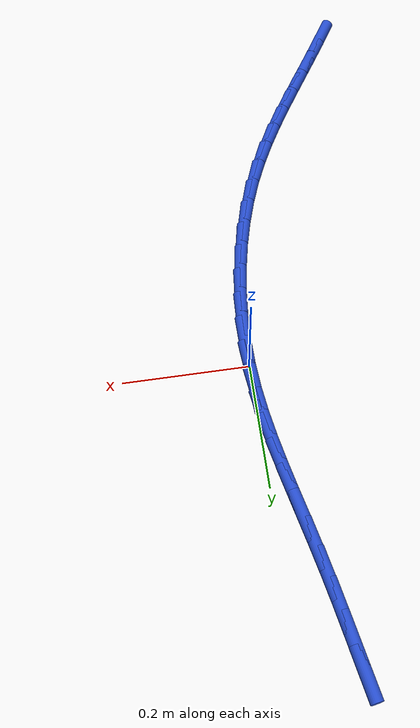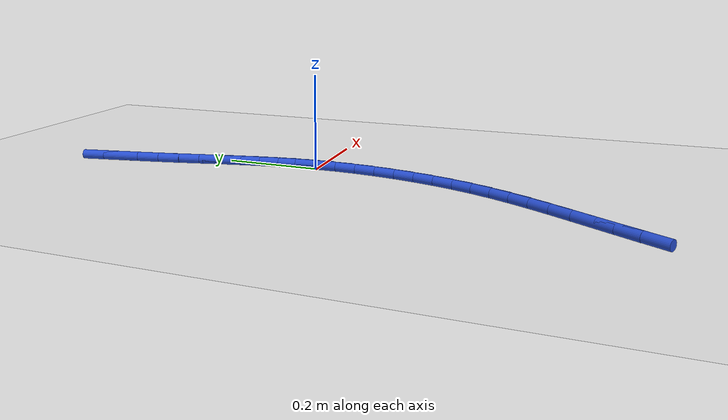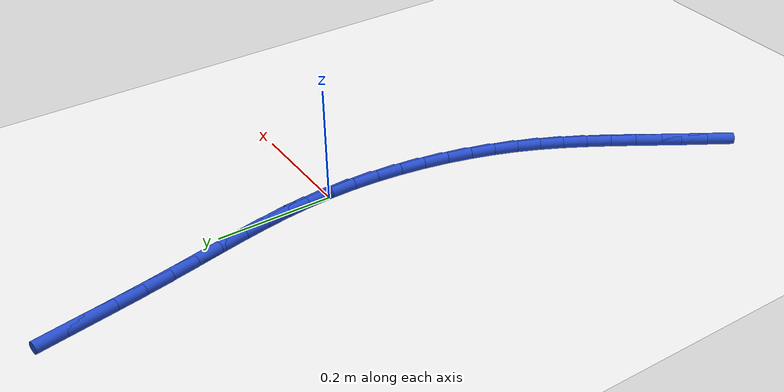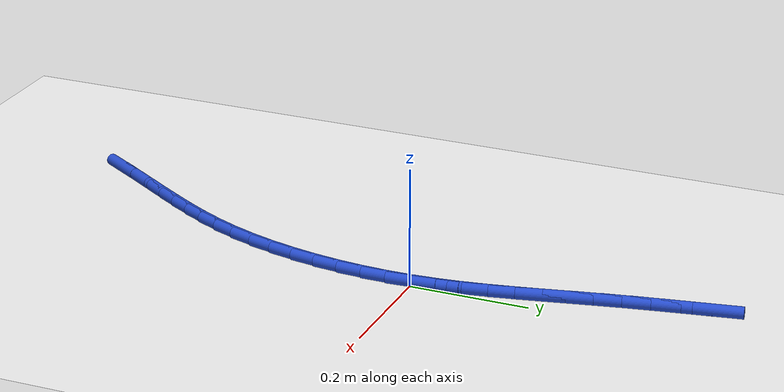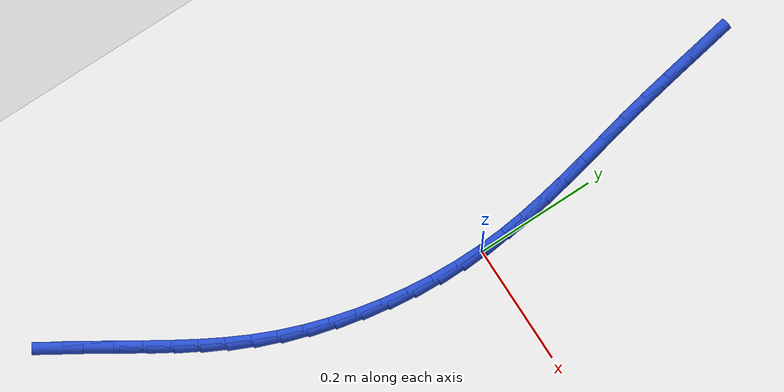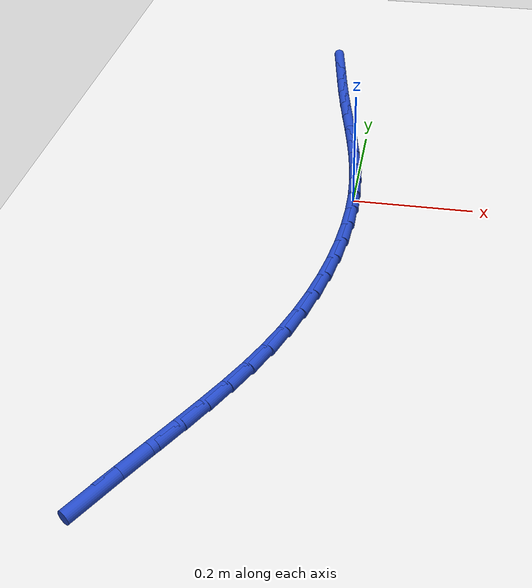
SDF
<sdf version="1.6">
 <world name="default">
  <model name="ground_plane">
   <static>1</static>
   <link name="link">
    <collision name="collision">
     <geometry><plane><normal>0 0 1</normal><size>100 100</size></plane></geometry>
     <surface><friction><ode><mu>100</mu><mu2>50</mu2></ode></friction></surface>
    </collision>
    <visual name="visual">
     <cast_shadows>0</cast_shadows>
     <geometry><plane><normal>0 0 1</normal><size>100 100</size></plane></geometry>
     <material>
      <script><uri>file://media/materials/scripts/gazebo.material</uri><name>Gazebo/WhiteGlow</name></script>
     </material>
    </visual>
   </link>
  </model>
  <model name="line">
   <link name="link_0">
    <pose>-2.6020852139652106e-17 8.326672684688674e-17 0.01 0 1.57 -1.5039802592208182</pose>
    <collision name="collision">
     <geometry><cylinder><radius>0.01</radius><length>0.08</length></cylinder></geometry>
    </collision>
    <visual name="visual">
     <material>
      <script><name>Gazebo/Blue</name><uri>file://media/materials/scripts/gazebo.material</uri></script>
     </material>
     <geometry><cylinder><radius>0.01</radius><length>0.08</length></cylinder></geometry>
    </visual>
   </link>
   <link name="link_1">
    <pose>-0.0028225287554615574 0.042180381461454544 0.01 0 1.57 -1.4535820970283893</pose>
    <collision name="collision">
     <geometry><cylinder><radius>0.01</radius><length>0.08</length></cylinder></geometry>
    </collision>
    <visual name="visual">
     <material>
      <script><name>Gazebo/Blue</name><uri>file://media/materials/scripts/gazebo.material</uri></script>
     </material>
     <geometry><cylinder><radius>0.01</radius><length>0.08</length></cylinder></geometry>
    </visual>
   </link>
   <link name="link_2">
    <pose>-0.007724210542841146 0.08380683631250536 0.01 0 1.57 -1.4125237762256877</pose>
    <collision name="collision">
     <geometry><cylinder><radius>0.01</radius><length>0.08</length></cylinder></geometry>
    </collision>
    <visual name="visual">
     <material>
      <script><name>Gazebo/Blue</name><uri>file://media/materials/scripts/gazebo.material</uri></script>
     </material>
     <geometry><cylinder><radius>0.01</radius><length>0.08</length></cylinder></geometry>
    </visual>
   </link>
   <link name="link_3">
    <pose>-0.014328746447339006 0.12518669179951855 0.01 0 1.57 -1.3816983247495067</pose>
    <collision name="collision">
     <geometry><cylinder><radius>0.01</radius><length>0.08</length></cylinder></geometry>
    </collision>
    <visual name="visual">
     <material>
      <script><name>Gazebo/Blue</name><uri>file://media/materials/scripts/gazebo.material</uri></script>
     </material>
     <geometry><cylinder><radius>0.01</radius><length>0.08</length></cylinder></geometry>
    </visual>
   </link>
   <link name="link_4">
    <pose>-0.02225983755415534 0.1666272751688602 0.01 0 1.57 -1.361479322060791</pose>
    <collision name="collision">
     <geometry><cylinder><radius>0.01</radius><length>0.08</length></cylinder></geometry>
    </collision>
    <visual name="visual">
     <material>
      <script><name>Gazebo/Blue</name><uri>file://media/materials/scripts/gazebo.material</uri></script>
     </material>
     <geometry><cylinder><radius>0.01</radius><length>0.08</length></cylinder></geometry>
    </visual>
   </link>
   <link name="link_5">
    <pose>-0.031141184948490358 0.2084359136668963 0.01 0 1.57 -1.3518041517038408</pose>
    <collision name="collision">
     <geometry><cylinder><radius>0.01</radius><length>0.08</length></cylinder></geometry>
    </collision>
    <visual name="visual">
     <material>
      <script><name>Gazebo/Blue</name><uri>file://media/materials/scripts/gazebo.material</uri></script>
     </material>
     <geometry><cylinder><radius>0.01</radius><length>0.08</length></cylinder></geometry>
    </visual>
   </link>
   <link name="link_6">
    <pose>-0.04059648971554426 0.250919934539993 0.01 0 1.57 -1.3522657269978196</pose>
    <collision name="collision">
     <geometry><cylinder><radius>0.01</radius><length>0.08</length></cylinder></geometry>
    </collision>
    <visual name="visual">
     <material>
      <script><name>Gazebo/Blue</name><uri>file://media/materials/scripts/gazebo.material</uri></script>
     </material>
     <geometry><cylinder><radius>0.01</radius><length>0.08</length></cylinder></geometry>
    </visual>
   </link>
   <link name="link_7">
    <pose>-0.05024945294051728 0.2943866650345163 0.01 0 1.57 -1.3621911399872573</pose>
    <collision name="collision">
     <geometry><cylinder><radius>0.01</radius><length>0.08</length></cylinder></geometry>
    </collision>
    <visual name="visual">
     <material>
      <script><name>Gazebo/Blue</name><uri>file://media/materials/scripts/gazebo.material</uri></script>
     </material>
     <geometry><cylinder><radius>0.01</radius><length>0.08</length></cylinder></geometry>
    </visual>
   </link>
   <link name="link_8">
    <pose>-0.059723775708609594 0.33914343239683226 0.01 0 1.57 -1.3784438186986334</pose>
    <collision name="collision">
     <geometry><cylinder><radius>0.01</radius><length>0.08</length></cylinder></geometry>
    </collision>
    <visual name="visual">
     <material>
      <script><name>Gazebo/Blue</name><uri>file://media/materials/scripts/gazebo.material</uri></script>
     </material>
     <geometry><cylinder><radius>0.01</radius><length>0.08</length></cylinder></geometry>
    </visual>
   </link>
   <link name="link_9">
    <pose>-0.06873208378869843 0.38539670055910574 0.01 0 1.57 -1.3898341945856387</pose>
    <collision name="collision">
     <geometry><cylinder><radius>0.01</radius><length>0.08</length></cylinder></geometry>
    </collision>
    <visual name="visual">
     <material>
      <script><name>Gazebo/Blue</name><uri>file://media/materials/scripts/gazebo.material</uri></script>
     </material>
     <geometry><cylinder><radius>0.01</radius><length>0.08</length></cylinder></geometry>
    </visual>
   </link>
   <link name="link_10">
    <pose>-0.07741708040426015 0.43286511572235636 0.01 0 1.57 -1.393740418584967</pose>
    <collision name="collision">
     <geometry><cylinder><radius>0.01</radius><length>0.08</length></cylinder></geometry>
    </collision>
    <visual name="visual">
     <material>
      <script><name>Gazebo/Blue</name><uri>file://media/materials/scripts/gazebo.material</uri></script>
     </material>
     <geometry><cylinder><radius>0.01</radius><length>0.08</length></cylinder></geometry>
    </visual>
   </link>
   <link name="link_11">
    <pose>-0.08605131432259203 0.4811200460614979 0.01 0 1.57 -1.3905971796316443</pose>
    <collision name="collision">
     <geometry><cylinder><radius>0.01</radius><length>0.08</length></cylinder></geometry>
    </collision>
    <visual name="visual">
     <material>
      <script><name>Gazebo/Blue</name><uri>file://media/materials/scripts/gazebo.material</uri></script>
     </material>
     <geometry><cylinder><radius>0.01</radius><length>0.08</length></cylinder></geometry>
    </visual>
   </link>
   <link name="link_164">
    <pose>-0.2307653923609441 -0.6375100485458838 0.01 0 1.57 1.0176358175102056</pose>
    <collision name="collision">
     <geometry><cylinder><radius>0.01</radius><length>0.08</length></cylinder></geometry>
    </collision>
    <visual name="visual">
     <material>
      <script><name>Gazebo/Blue</name><uri>file://media/materials/scripts/gazebo.material</uri></script>
     </material>
     <geometry><cylinder><radius>0.01</radius><length>0.08</length></cylinder></geometry>
    </visual>
   </link>
   <link name="link_165">
    <pose>-0.205802517911087 -0.597081866721222 0.01 0 1.57 1.0065066894985413</pose>
    <collision name="collision">
     <geometry><cylinder><radius>0.01</radius><length>0.08</length></cylinder></geometry>
    </collision>
    <visual name="visual">
     <material>
      <script><name>Gazebo/Blue</name><uri>file://media/materials/scripts/gazebo.material</uri></script>
     </material>
     <geometry><cylinder><radius>0.01</radius><length>0.08</length></cylinder></geometry>
    </visual>
   </link>
   <link name="link_166">
    <pose>-0.18149228326233163 -0.5586735189953079 0.01 0 1.57 1.0046422994077906</pose>
    <collision name="collision">
     <geometry><cylinder><radius>0.01</radius><length>0.08</length></cylinder></geometry>
    </collision>
    <visual name="visual">
     <material>
      <script><name>Gazebo/Blue</name><uri>file://media/materials/scripts/gazebo.material</uri></script>
     </material>
     <geometry><cylinder><radius>0.01</radius><length>0.08</length></cylinder></geometry>
    </visual>
   </link>
   <link name="link_167">
    <pose>-0.15801279014275396 -0.521730275589185 0.01 0 1.57 1.0131933398462991</pose>
    <collision name="collision">
     <geometry><cylinder><radius>0.01</radius><length>0.08</length></cylinder></geometry>
    </collision>
    <visual name="visual">
     <material>
      <script><name>Gazebo/Blue</name><uri>file://media/materials/scripts/gazebo.material</uri></script>
     </material>
     <geometry><cylinder><radius>0.01</radius><length>0.08</length></cylinder></geometry>
    </visual>
   </link>
   <link name="link_168">
    <pose>-0.13554214028043032 -0.4856974067238974 0.01 0 1.57 1.0329080088812597</pose>
    <collision name="collision">
     <geometry><cylinder><radius>0.01</radius><length>0.08</length></cylinder></geometry>
    </collision>
    <visual name="visual">
     <material>
      <script><name>Gazebo/Blue</name><uri>file://media/materials/scripts/gazebo.material</uri></script>
     </material>
     <geometry><cylinder><radius>0.01</radius><length>0.08</length></cylinder></geometry>
    </visual>
   </link>
   <link name="link_169">
    <pose>-0.11425843540343694 -0.4500201826204888 0.01 0 1.57 1.0639667631992824</pose>
    <collision name="collision">
     <geometry><cylinder><radius>0.01</radius><length>0.08</length></cylinder></geometry>
    </collision>
    <visual name="visual">
     <material>
      <script><name>Gazebo/Blue</name><uri>file://media/materials/scripts/gazebo.material</uri></script>
     </material>
     <geometry><cylinder><radius>0.01</radius><length>0.08</length></cylinder></geometry>
    </visual>
   </link>
   <link name="link_170">
    <pose>-0.09433977723984999 -0.41414387350000326 0.01 0 1.57 1.1058294134005542</pose>
    <collision name="collision">
     <geometry><cylinder><radius>0.01</radius><length>0.08</length></cylinder></geometry>
    </collision>
    <visual name="visual">
     <material>
      <script><name>Gazebo/Blue</name><uri>file://media/materials/scripts/gazebo.material</uri></script>
     </material>
     <geometry><cylinder><radius>0.01</radius><length>0.08</length></cylinder></geometry>
    </visual>
   </link>
   <link name="link_171">
    <pose>-0.07596426751774654 -0.37751374958348605 0.01 0 1.57 1.1571451322970137</pose>
    <collision name="collision">
     <geometry><cylinder><radius>0.01</radius><length>0.08</length></cylinder></geometry>
    </collision>
    <visual name="visual">
     <material>
      <script><name>Gazebo/Blue</name><uri>file://media/materials/scripts/gazebo.material</uri></script>
     </material>
     <geometry><cylinder><radius>0.01</radius><length>0.08</length></cylinder></geometry>
    </visual>
   </link>
   <link name="link_172">
    <pose>-0.05931000344346756 -0.3395751183727561 0.01 0 1.57 1.2138533514107772</pose>
    <collision name="collision">
     <geometry><cylinder><radius>0.01</radius><length>0.08</length></cylinder></geometry>
    </collision>
    <visual name="visual">
     <material>
      <script><name>Gazebo/Blue</name><uri>file://media/materials/scripts/gazebo.material</uri></script>
     </material>
     <geometry><cylinder><radius>0.01</radius><length>0.08</length></cylinder></geometry>
    </visual>
   </link>
   <link name="link_173">
    <pose>-0.04453352275102504 -0.29995104078563284 0.01 0 1.57 1.2685647148172818</pose>
    <collision name="collision">
     <geometry><cylinder><radius>0.01</radius><length>0.08</length></cylinder></geometry>
    </collision>
    <visual name="visual">
     <material>
      <script><name>Gazebo/Blue</name><uri>file://media/materials/scripts/gazebo.material</uri></script>
     </material>
     <geometry><cylinder><radius>0.01</radius><length>0.08</length></cylinder></geometry>
    </visual>
   </link>
   <link name="link_174">
    <pose>-0.031719953384699025 -0.2588533367720132 0.01 0 1.57 1.32090256729594</pose>
    <collision name="collision">
     <geometry><cylinder><radius>0.01</radius><length>0.08</length></cylinder></geometry>
    </collision>
    <visual name="visual">
     <material>
      <script><name>Gazebo/Blue</name><uri>file://media/materials/scripts/gazebo.material</uri></script>
     </material>
     <geometry><cylinder><radius>0.01</radius><length>0.08</length></cylinder></geometry>
    </visual>
   </link>
   <link name="link_175">
    <pose>-0.020939658290289695 -0.21661556065807822 0.01 0 1.57 1.371886706776584</pose>
    <collision name="collision">
     <geometry><cylinder><radius>0.01</radius><length>0.08</length></cylinder></geometry>
    </collision>
    <visual name="visual">
     <material>
      <script><name>Gazebo/Blue</name><uri>file://media/materials/scripts/gazebo.material</uri></script>
     </material>
     <geometry><cylinder><radius>0.01</radius><length>0.08</length></cylinder></geometry>
    </visual>
   </link>
   <link name="link_176">
    <pose>-0.012263000413597087 -0.1735712667700077 0.01 0 1.57 1.4224667162581706</pose>
    <collision name="collision">
     <geometry><cylinder><radius>0.01</radius><length>0.08</length></cylinder></geometry>
    </collision>
    <visual name="visual">
     <material>
      <script><name>Gazebo/Blue</name><uri>file://media/materials/scripts/gazebo.material</uri></script>
     </material>
     <geometry><cylinder><radius>0.01</radius><length>0.08</length></cylinder></geometry>
    </visual>
   </link>
   <link name="link_177">
    <pose>-0.005760342700421736 -0.13005400943398418 0.01 0 1.57 1.4735633764424554</pose>
    <collision name="collision">
     <geometry><cylinder><radius>0.01</radius><length>0.08</length></cylinder></geometry>
    </collision>
    <visual name="visual">
     <material>
      <script><name>Gazebo/Blue</name><uri>file://media/materials/scripts/gazebo.material</uri></script>
     </material>
     <geometry><cylinder><radius>0.01</radius><length>0.08</length></cylinder></geometry>
    </visual>
   </link>
   <link name="link_178">
    <pose>-0.001502048096563651 -0.08639734297618783 0.01 0 1.57 1.5261078339998764</pose>
    <collision name="collision">
     <geometry><cylinder><radius>0.01</radius><length>0.08</length></cylinder></geometry>
    </collision>
    <visual name="visual">
     <material>
      <script><name>Gazebo/Blue</name><uri>file://media/materials/scripts/gazebo.material</uri></script>
     </material>
     <geometry><cylinder><radius>0.01</radius><length>0.08</length></cylinder></geometry>
    </visual>
   </link>
   <link name="link_179">
    <pose>0.00044152045217698416 -0.04293482172279944 0.01 0 1.57 -1.5605131843062843</pose>
    <collision name="collision">
     <geometry><cylinder><radius>0.01</radius><length>0.08</length></cylinder></geometry>
    </collision>
    <visual name="visual">
     <material>
      <script><name>Gazebo/Blue</name><uri>file://media/materials/scripts/gazebo.material</uri></script>
     </material>
     <geometry><cylinder><radius>0.01</radius><length>0.08</length></cylinder></geometry>
    </visual>
   </link>
   <link name="link_180">
    <pose>-2.6020852139652106e-17 7.632783294297951e-17 0.01 0 1.57 -1.5020499061342487</pose>
    <collision name="collision">
     <geometry><cylinder><radius>0.01</radius><length>0.08</length></cylinder></geometry>
    </collision>
    <visual name="visual">
     <material>
      <script><name>Gazebo/Blue</name><uri>file://media/materials/scripts/gazebo.material</uri></script>
     </material>
     <geometry><cylinder><radius>0.01</radius><length>0.08</length></cylinder></geometry>
    </visual>
   </link>
   <link name="link_181">
    <pose>-0.002896972398894873 0.04207356786602992 0.01 0 1.57 -1.5020499061342485</pose>
    <collision name="collision">
     <geometry><cylinder><radius>0.01</radius><length>0.08</length></cylinder></geometry>
    </collision>
    <visual name="visual">
     <material>
      <script><name>Gazebo/Blue</name><uri>file://media/materials/scripts/gazebo.material</uri></script>
     </material>
     <geometry><cylinder><radius>0.01</radius><length>0.08</length></cylinder></geometry>
    </visual>
   </link>
  </model>
 </world>
</sdf>
